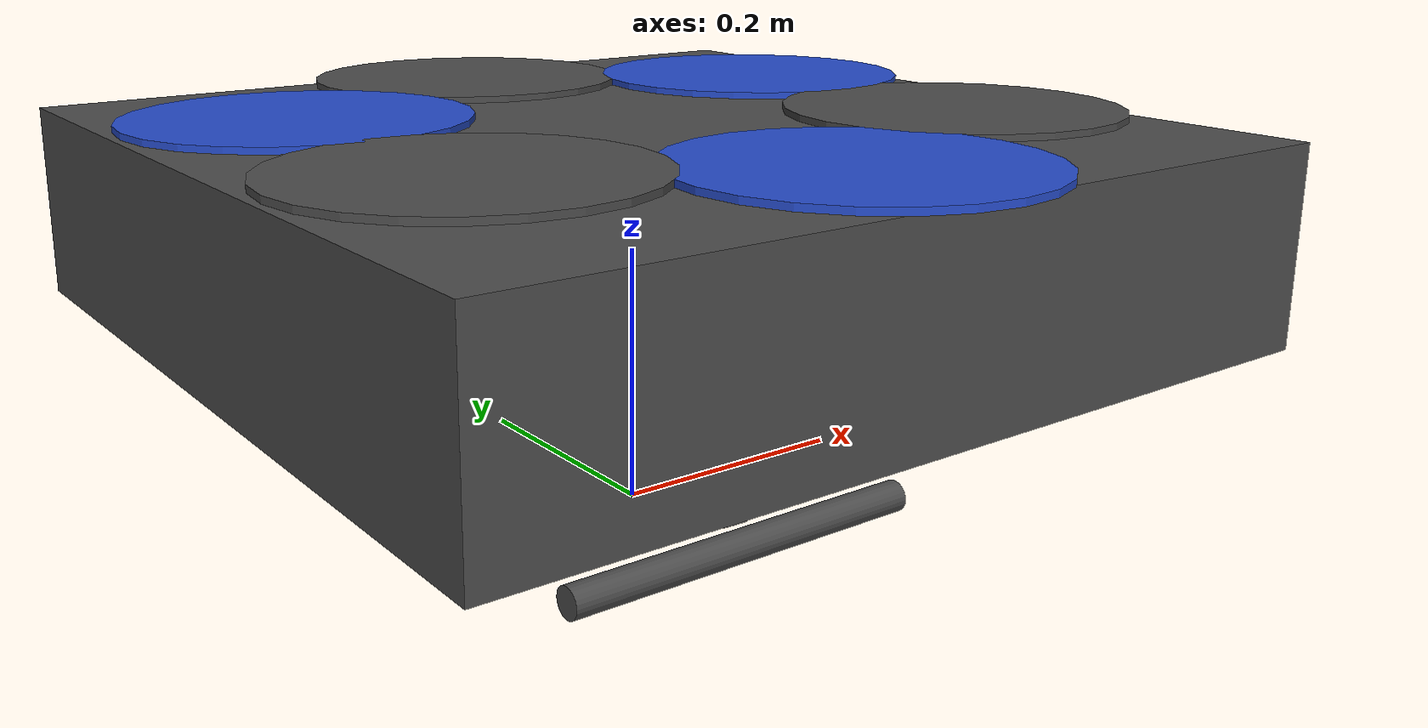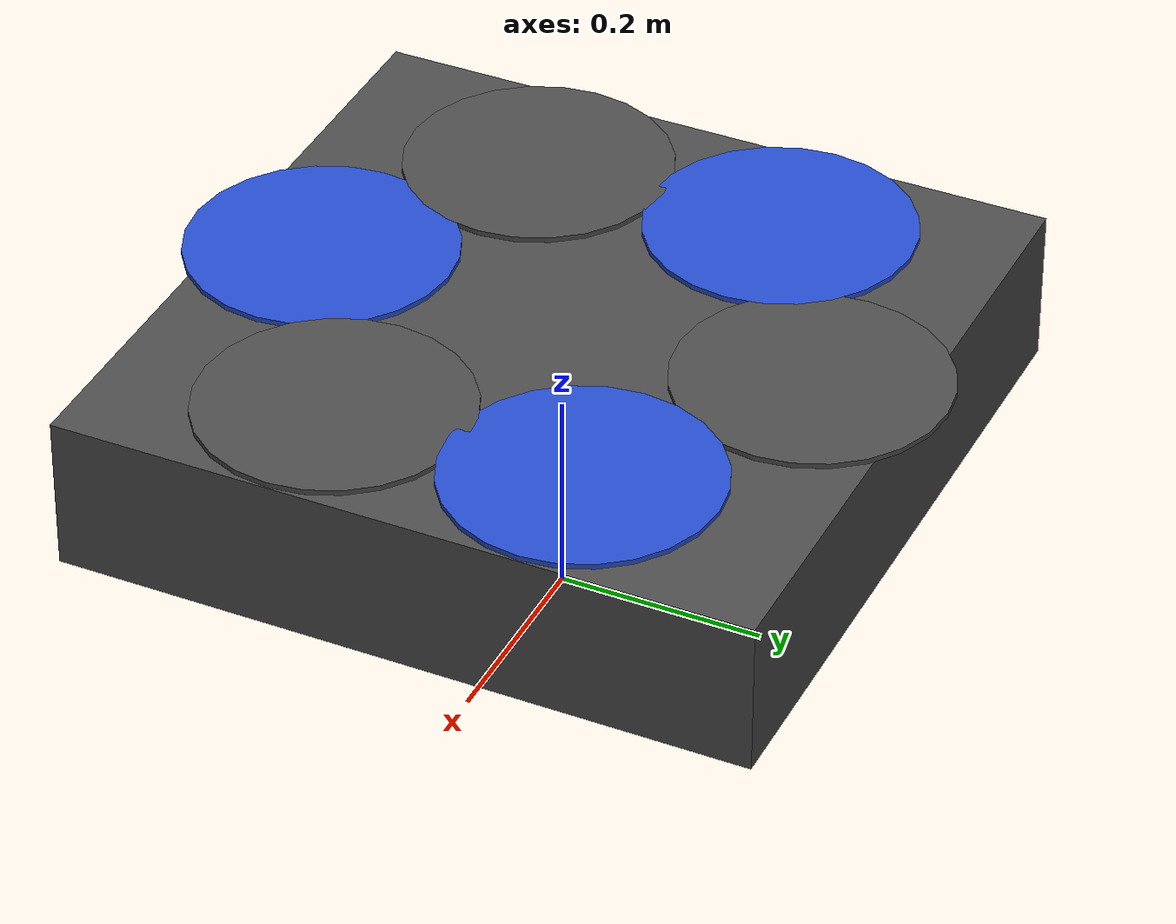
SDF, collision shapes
<sdf version='1.6'>
  <model name='yuneec_typhoon'>
    <pose frame=''>0 0 0.220217 0 0 0</pose>
    <link name='base_link'>
      <pose frame=''>0 0 0 0 -0 0</pose>
      <inertial>
        <pose frame=''>0 0 0 0 -0 0</pose>
        <mass>1.5</mass>
        <inertia>
          <ixx>0.0347563</ixx>
          <ixy>0</ixy>
          <ixz>0</ixz>
          <iyy>0.0458929</iyy>
          <iyz>0</iyz>
          <izz>0.0977</izz>
        </inertia>
      </inertial>
      <collision name='base_link_collision'>
        <pose frame=''>0 0 0.0 0 0 0</pose>
        <geometry>
          <box>
            <size>0.67 0.67 0.15</size>
          </box>
        </geometry>
        <surface>
          <contact>
            <ode>
              <min_depth>0.001</min_depth>
              <max_vel>0</max_vel>
            </ode>
          </contact>
          <friction>
            <ode/>
          </friction>
        </surface>
      </collision>
      <visual name='base_link_inertia_visual'>
        <pose frame=''>0 0 0 0 -0 0</pose>
        <geometry>
          <mesh>
            <scale>0.001 0.001 0.001</scale>
            <uri>model://yuneec_typhoon/meshes/main_body_internal_removed_face_ambient_occlusion_quadric_edge_collapse.stl</uri>
          </mesh>
        </geometry>
        <material>
          <script>
            <name>Gazebo/DarkGrey</name>
            <uri>file://media/materials/scripts/gazebo.material</uri>
          </script>
        </material>
      </visual>
      <visual name='rotor_0_prop_guard_jybhz'>
        <pose frame=''>0 0 0 0 0 3.14159265359</pose>
        <geometry>
          <mesh>
            <scale>0.001 0.001 0.001</scale>
            <uri>model://yuneec_typhoon/meshes/prop_guard_jybhz.stl</uri>
          </mesh>
        </geometry>
        <material>
          <script>
            <name>Gazebo/DarkGrey</name>
            <uri>file://media/materials/scripts/gazebo.material</uri>
          </script>
        </material>
      </visual>
      <visual name='rotor_1_prop_guard_jybhz'>
        <pose frame=''>0 0 0 0 0 -1.0471975512</pose>
        <geometry>
          <mesh>
            <scale>0.001 0.001 0.001</scale>
            <uri>model://yuneec_typhoon/meshes/prop_guard_jybhz.stl</uri>
          </mesh>
        </geometry>
        <material>
          <script>
            <name>Gazebo/DarkGrey</name>
            <uri>file://media/materials/scripts/gazebo.material</uri>
          </script>
        </material>
      </visual>
      <visual name='rotor_2_prop_guard_jybhz'>
        <pose frame=''>0 0 0 0 0 -2.09439510239</pose>
        <geometry>
          <mesh>
            <scale>0.001 0.001 0.001</scale>
            <uri>model://yuneec_typhoon/meshes/prop_guard_jybhz.stl</uri>
          </mesh>
        </geometry>
        <material>
          <script>
            <name>Gazebo/DarkGrey</name>
            <uri>file://media/materials/scripts/gazebo.material</uri>
          </script>
        </material>
      </visual>
      <visual name='rotor_3_prop_guard_jybhz'>
        <pose frame=''>0 0 0 0 0 2.09439510239</pose>
        <geometry>
          <mesh>
            <scale>0.001 0.001 0.001</scale>
            <uri>model://yuneec_typhoon/meshes/prop_guard_jybhz.stl</uri>
          </mesh>
        </geometry>
        <material>
          <script>
            <name>Gazebo/DarkGrey</name>
            <uri>file://media/materials/scripts/gazebo.material</uri>
          </script>
        </material>
      </visual>
      <visual name='rotor_4_prop_guard_jybhz'>
        <pose frame=''>0 0 0 0 0 1.0471975512</pose>
        <geometry>
          <mesh>
            <scale>0.001 0.001 0.001</scale>
            <uri>model://yuneec_typhoon/meshes/prop_guard_jybhz.stl</uri>
          </mesh>
        </geometry>
        <material>
          <script>
            <name>Gazebo/DarkGrey</name>
            <uri>file://media/materials/scripts/gazebo.material</uri>
          </script>
        </material>
      </visual>
      <visual name='rotor_5_prop_guard_jybhz'>
        <pose frame=''>0 0 0 0 0 0</pose>
        <geometry>
          <mesh>
            <scale>0.001 0.001 0.001</scale>
            <uri>model://yuneec_typhoon/meshes/prop_guard_jybhz.stl</uri>
          </mesh>
        </geometry>
        <material>
          <script>
            <name>Gazebo/DarkGrey</name>
            <uri>file://media/materials/scripts/gazebo.material</uri>
          </script>
        </material>
      </visual>
      <gravity>1</gravity>
      <velocity_decay/>
      <self_collide>0</self_collide>
    </link>

    <link name="left_leg">
      <inertial>
        <!-- place holder -->
        <pose frame=''>0 0 0 0 -0 0</pose>
        <mass>0.1</mass>
        <inertia>
          <ixx>0.001</ixx>
          <ixy>0</ixy>
          <ixz>0</ixz>
          <iyy>0.001</iyy>
          <iyz>0</iyz>
          <izz>0.001</izz>
        </inertia>
      </inertial>
      <collision name='collision'>
        <pose frame=''>-0.005 -0.14314 -0.207252 0 1.56893 0</pose>
        <geometry>
          <cylinder>
            <radius>0.012209</radius>
            <length>0.3</length>
          </cylinder>
        </geometry>
        <surface>
          <friction>
            <ode>
              <mu>1</mu>
              <mu2>1</mu2>
            </ode>
          </friction>
          <contact>
            <ode>
              <kp>1e+8</kp>
              <kd>1</kd>
              <max_vel>0.01</max_vel>
              <min_depth>0.001</min_depth>
            </ode>
          </contact>
        </surface>
      </collision>
      <collision name='collision_bar'>
        <pose frame=''>0.00052 -0.08503 -0.121187 -0.501318 0 0</pose>
        <geometry>
          <cylinder>
            <radius>0.00914984</radius>
            <length>0.176893</length>
          </cylinder>
        </geometry>
        <surface>
          <friction>
            <ode>
              <mu>1</mu>
              <mu2>1</mu2>
            </ode>
          </friction>
          <contact>
            <ode>
              <kp>1e+8</kp>
              <kd>1</kd>
              <max_vel>0.01</max_vel>
              <min_depth>0.001</min_depth>
            </ode>
          </contact>
        </surface>
      </collision>
      <visual name='base_link_left_leg'>
        <pose frame=''>0 0 0 0 -0 0</pose>
        <geometry>
          <mesh>
            <scale>0.001 0.001 0.001</scale>
            <uri>model://yuneec_typhoon/meshes/left_leg.stl</uri>
          </mesh>
        </geometry>
        <material>
          <script>
            <name>Gazebo/DarkGrey</name>
            <uri>file://media/materials/scripts/gazebo.material</uri>
          </script>
        </material>
      </visual>
    </link>
    <joint name='left_leg_joint' type='revolute'>
      <child>left_leg</child>
      <parent>base_link</parent>
      <pose frame=''>0.00026 -0.040515 -0.048 0 0 0</pose>
      <axis>
        <xyz>-1 0 0</xyz>
        <limit>
          <lower>0</lower>
          <upper>1.4</upper>
          <effort>100</effort>
          <velocity>-1</velocity>
        </limit>
        <dynamics>
          <damping>1</damping>
          <spring_reference>0</spring_reference>
          <spring_stiffness>0</spring_stiffness>
        </dynamics>
        <physics>
          <ode>
            <implicit_spring_damper>1</implicit_spring_damper>
          </ode>
        </physics>
        <use_parent_model_frame>1</use_parent_model_frame>
      </axis>
    </joint>

    <link name="right_leg">
      <pose frame=''>0 0 0 0 -0 0</pose>
      <inertial>
        <!-- place holder -->
        <pose frame=''>0 0 0 0 -0 0</pose>
        <mass>0.1</mass>
        <inertia>
          <ixx>0.001</ixx>
          <ixy>0</ixy>
          <ixz>0</ixz>
          <iyy>0.001</iyy>
          <iyz>0</iyz>
          <izz>0.001</izz>
        </inertia>
      </inertial>
      <collision name='collision'>
        <pose frame=''>-0.005 0.14314 -0.207252 0 1.56893 0</pose>
        <geometry>
          <cylinder>
            <radius>0.012209</radius>
            <length>0.3</length>
          </cylinder>
        </geometry>
        <surface>
          <friction>
            <ode>
              <mu>1</mu>
              <mu2>1</mu2>
            </ode>
          </friction>
          <contact>
            <ode>
              <kp>1e+8</kp>
              <kd>1</kd>
              <max_vel>0.01</max_vel>
              <min_depth>0.001</min_depth>
            </ode>
          </contact>
        </surface>
      </collision>
      <collision name='collision_bar'>
        <pose frame=''>0.00052 0.08503 -0.121187 0.501318 0 0</pose>
        <geometry>
          <cylinder>
            <radius>0.00914984</radius>
            <length>0.176893</length>
          </cylinder>
        </geometry>
        <surface>
          <friction>
            <ode>
              <mu>1</mu>
              <mu2>1</mu2>
            </ode>
          </friction>
          <contact>
            <ode>
              <kp>1e+8</kp>
              <kd>1</kd>
              <max_vel>0.01</max_vel>
              <min_depth>0.001</min_depth>
            </ode>
          </contact>
        </surface>
      </collision>
      <visual name='base_link_right_leg'>
        <pose frame=''>0 0 0 0 -0 0</pose>
        <geometry>
          <mesh>
            <scale>0.001 0.001 0.001</scale>
            <uri>model://yuneec_typhoon/meshes/right_leg.stl</uri>
          </mesh>
        </geometry>
        <material>
          <script>
            <name>Gazebo/DarkGrey</name>
            <uri>file://media/materials/scripts/gazebo.material</uri>
          </script>
        </material>
      </visual>
    </link>
    <joint name='right_leg_joint' type='revolute'>
      <child>right_leg</child>
      <parent>base_link</parent>
      <pose frame=''>0.00026 0.040515 -0.048 0 0 0</pose>
      <axis>
        <xyz>1 0 0</xyz>
        <limit>
          <lower>0</lower>
          <upper>1.4</upper>
          <effort>100</effort>
          <velocity>-1</velocity>
        </limit>
        <dynamics>
          <damping>1</damping>
          <spring_reference>0</spring_reference>
          <spring_stiffness>0</spring_stiffness>
        </dynamics>
        <physics>
          <ode>
            <implicit_spring_damper>1</implicit_spring_damper>
          </ode>
        </physics>
        <use_parent_model_frame>1</use_parent_model_frame>
      </axis>
    </joint>

    <link name='yuneec_typhoon/imu_link'>
      <pose frame=''>0 0 0 0 -0 0</pose>
      <inertial>
        <pose frame=''>0 0 0 0 -0 0</pose>
        <mass>0.015</mass>
        <inertia>
          <ixx>1e-05</ixx>
          <ixy>0</ixy>
          <ixz>0</ixz>
          <iyy>1e-05</iyy>
          <iyz>0</iyz>
          <izz>1e-05</izz>
        </inertia>
      </inertial>
    </link>
    <joint name='yuneec_typhoon/imu_joint' type='revolute'>
      <child>yuneec_typhoon/imu_link</child>
      <parent>base_link</parent>
      <axis>
        <xyz>1 0 0</xyz>
        <limit>
          <lower>0</lower>
          <upper>0</upper>
          <effort>0</effort>
          <velocity>0</velocity>
        </limit>
        <dynamics>
          <spring_reference>0</spring_reference>
          <spring_stiffness>0</spring_stiffness>
        </dynamics>
        <use_parent_model_frame>1</use_parent_model_frame>
      </axis>
    </joint>
    <link name='rotor_0'>
      <pose frame=''>0.211396 0.119762 0.082219 0 0 0</pose>
      <inertial>
        <pose frame=''>0 0 0 0 -0 0</pose>
        <mass>0.005</mass>
        <inertia>
          <ixx>9.75e-07</ixx>
          <ixy>0</ixy>
          <ixz>0</ixz>
          <iyy>0.000273104</iyy>
          <iyz>0</iyz>
          <izz>0.000274004</izz>
        </inertia>
      </inertial>
      <collision name='rotor_0_collision'>
        <pose frame=''>0 0 0 0 -0 0</pose>
        <geometry>
          <cylinder>
            <length>0.005</length>
            <radius>0.128</radius>
          </cylinder>
        </geometry>
        <surface>
          <contact>
            <ode/>
          </contact>
          <friction>
            <ode/>
          </friction>
        </surface>
      </collision>
      <visual name='rotor_0_visual'>
        <pose frame=''>-0.211396 -0.119762 -0.082219 0 0 0</pose>
        <geometry>
          <mesh>
            <scale>0.001 0.001 0.001</scale>
            <uri>model://yuneec_typhoon/meshes/propeller_ccw.stl</uri>
          </mesh>
        </geometry>
        <material>
          <script>
            <name>Gazebo/Blue</name>
            <uri>file://media/materials/scripts/gazebo.material</uri>
          </script>
        </material>
      </visual>
      <gravity>1</gravity>
      <velocity_decay/>
      <self_collide>0</self_collide>
    </link>
    <joint name='rotor_0_joint' type='revolute'>
      <child>rotor_0</child>
      <parent>base_link</parent>
      <axis>
        <xyz>0.0446 -0.0825 1.8977</xyz>
        <limit>
          <lower>-1e+16</lower>
          <upper>1e+16</upper>
        </limit>
        <dynamics>
          <spring_reference>0</spring_reference>
          <spring_stiffness>0</spring_stiffness>
        </dynamics>
        <use_parent_model_frame>1</use_parent_model_frame>
      </axis>
    </joint>
    <link name='rotor_1'>
      <pose frame=''>-0.209396 0.122762 0.082219 0 0 2.09439510239</pose>
      <inertial>
        <pose frame=''>0 0 0 0 -0 0</pose>
        <mass>0.005</mass>
        <inertia>
          <ixx>9.75e-07</ixx>
          <ixy>0</ixy>
          <ixz>0</ixz>
          <iyy>0.000273104</iyy>
          <iyz>0</iyz>
          <izz>0.000274004</izz>
        </inertia>
      </inertial>
      <collision name='rotor_1_collision'>
        <pose frame=''>0 0 0 0 -0 0</pose>
        <geometry>
          <cylinder>
            <length>0.005</length>
            <radius>0.128</radius>
          </cylinder>
        </geometry>
        <surface>
          <contact>
            <ode/>
          </contact>
          <friction>
            <ode/>
          </friction>
        </surface>
      </collision>
      <visual name='rotor_1_visual'>
        <pose frame=''>-0.211396 -0.119762 -0.082219 0 0 0</pose>
        <geometry>
          <mesh>
            <scale>0.001 0.001 0.001</scale>
            <uri>model://yuneec_typhoon/meshes/propeller_ccw.stl</uri>
          </mesh>
        </geometry>
        <material>
          <script>
            <name>Gazebo/Blue</name>
            <uri>file://media/materials/scripts/gazebo.material</uri>
          </script>
        </material>
      </visual>
      <gravity>1</gravity>
      <velocity_decay/>
      <self_collide>0</self_collide>
    </link>
    <joint name='rotor_1_joint' type='revolute'>
      <child>rotor_1</child>
      <parent>base_link</parent>
      <axis>
        <xyz>0.046 0.0827 1.8977</xyz>
        <limit>
          <lower>-1e+16</lower>
          <upper>1e+16</upper>
        </limit>
        <dynamics>
          <spring_reference>0</spring_reference>
          <spring_stiffness>0</spring_stiffness>
        </dynamics>
        <use_parent_model_frame>1</use_parent_model_frame>
      </axis>
    </joint>
    <link name='rotor_2'>
      <pose frame=''>-0.00187896 0.242705 0.0822169 0 0 0</pose>
      <inertial>
        <pose frame=''>0 0 0 0 -0 0</pose>
        <mass>0.005</mass>
        <inertia>
          <ixx>9.75e-07</ixx>
          <ixy>0</ixy>
          <ixz>0</ixz>
          <iyy>0.000273104</iyy>
          <iyz>0</iyz>
          <izz>0.000274004</izz>
        </inertia>
      </inertial>
      <collision name='rotor_2_collision'>
        <pose frame=''>0 0 0 0 -0 0</pose>
        <geometry>
          <cylinder>
            <length>0.005</length>
            <radius>0.128</radius>
          </cylinder>
        </geometry>
        <surface>
          <contact>
            <ode/>
          </contact>
          <friction>
            <ode/>
          </friction>
        </surface>
      </collision>
      <visual name='rotor_2_visual'>
        <pose frame=''>0.00187896 -0.242705 -0.0822169 0 0 0</pose>
        <geometry>
          <mesh>
            <scale>0.001 0.001 0.001</scale>
            <uri>model://yuneec_typhoon/meshes/propeller_cw.stl</uri>
          </mesh>
        </geometry>
        <material>
          <script>
            <name>Gazebo/DarkGrey</name>
            <uri>file://media/materials/scripts/gazebo.material</uri>
          </script>
        </material>
      </visual>
      <gravity>1</gravity>
      <velocity_decay/>
      <self_collide>0</self_collide>
    </link>
    <joint name='rotor_2_joint' type='revolute'>
      <child>rotor_2</child>
      <parent>base_link</parent>
      <axis>
        <xyz>-0.09563 -0.0003 1.8976</xyz>
        <limit>
          <lower>-1e+16</lower>
          <upper>1e+16</upper>
        </limit>
        <dynamics>
          <spring_reference>0</spring_reference>
          <spring_stiffness>0</spring_stiffness>
        </dynamics>
        <use_parent_model_frame>1</use_parent_model_frame>
      </axis>
    </joint>
    <link name='rotor_3'>
      <pose frame=''>0.211396 -0.119762 0.082219 0 0 -2.09439510239</pose>
      <inertial>
        <pose frame=''>0 0 0 0 -0 0</pose>
        <mass>0.005</mass>
        <inertia>
          <ixx>9.75e-07</ixx>
          <ixy>0</ixy>
          <ixz>0</ixz>
          <iyy>0.000273104</iyy>
          <iyz>0</iyz>
          <izz>0.000274004</izz>
        </inertia>
      </inertial>
      <collision name='rotor_3_collision'>
        <pose frame=''>0 0 0 0 -0 0</pose>
        <geometry>
          <cylinder>
            <length>0.005</length>
            <radius>0.128</radius>
          </cylinder>
        </geometry>
        <surface>
          <contact>
            <ode/>
          </contact>
          <friction>
            <ode/>
          </friction>
        </surface>
      </collision>
      <visual name='rotor_3_visual'>
        <pose frame=''>0.00187896 -0.242705 -0.0822169 0 0 0</pose>
        <geometry>
          <mesh>
            <scale>0.001 0.001 0.001</scale>
            <uri>model://yuneec_typhoon/meshes/propeller_cw.stl</uri>
          </mesh>
        </geometry>
        <material>
          <script>
            <name>Gazebo/DarkGrey</name>
            <uri>file://media/materials/scripts/gazebo.material</uri>
          </script>
        </material>
      </visual>
      <gravity>1</gravity>
      <velocity_decay/>
      <self_collide>0</self_collide>
    </link>
    <joint name='rotor_3_joint' type='revolute'>
      <child>rotor_3</child>
      <parent>base_link</parent>
      <axis>
        <xyz>0.0486 0.0811 1.8976</xyz>
        <limit>
          <lower>-1e+16</lower>
          <upper>1e+16</upper>
        </limit>
        <dynamics>
          <spring_reference>0</spring_reference>
          <spring_stiffness>0</spring_stiffness>
        </dynamics>
        <use_parent_model_frame>1</use_parent_model_frame>
      </axis>
    </joint>

    <link name='rotor_4'>
      <pose frame=''>-0.00187896 -0.242705 0.0822169 0 0 -2.09439510239</pose>
      <inertial>
        <pose frame=''>0 0 0 0 -0 0</pose>
        <mass>0.005</mass>
        <inertia>
          <ixx>9.75e-07</ixx>
          <ixy>0</ixy>
          <ixz>0</ixz>
          <iyy>0.000273104</iyy>
          <iyz>0</iyz>
          <izz>0.000274004</izz>
        </inertia>
      </inertial>
      <collision name='rotor_4_collision'>
        <pose frame=''>0 0 0 0 -0 0</pose>
        <geometry>
          <cylinder>
            <length>0.005</length>
            <radius>0.128</radius>
          </cylinder>
        </geometry>
        <surface>
          <contact>
            <ode/>
          </contact>
          <friction>
            <ode/>
          </friction>
        </surface>
      </collision>
      <visual name='rotor_4_visual'>
        <pose frame=''>-0.211396 -0.119762 -0.082219 0 0 0</pose>
        <geometry>
          <mesh>
            <scale>0.001 0.001 0.001</scale>
            <uri>model://yuneec_typhoon/meshes/propeller_ccw.stl</uri>
          </mesh>
        </geometry>
        <material>
          <script>
            <name>Gazebo/Blue</name>
            <uri>file://media/materials/scripts/gazebo.material</uri>
          </script>
        </material>
      </visual>
      <gravity>1</gravity>
      <velocity_decay/>
      <self_collide>0</self_collide>
    </link>
    <joint name='rotor_4_joint' type='revolute'>
      <child>rotor_4</child>
      <parent>base_link</parent>
      <axis>
        <xyz>-0.033996 -0.0006 0.68216</xyz>
        <limit>
          <lower>-1e+16</lower>
          <upper>1e+16</upper>
        </limit>
        <dynamics>
          <spring_reference>0</spring_reference>
          <spring_stiffness>0</spring_stiffness>
        </dynamics>
        <use_parent_model_frame>1</use_parent_model_frame>
      </axis>
    </joint>
    <link name='rotor_5'>
      <pose frame=''>-0.209396 -0.122762 0.082219 0 0 2.09439510239</pose>
      <inertial>
        <pose frame=''>0 0 0 0 -0 0</pose>
        <mass>0.005</mass>
        <inertia>
          <ixx>9.75e-07</ixx>
          <ixy>0</ixy>
          <ixz>0</ixz>
          <iyy>0.000273104</iyy>
          <iyz>0</iyz>
          <izz>0.000274004</izz>
        </inertia>
      </inertial>
      <collision name='rotor_5_collision'>
        <pose frame=''>0 0 0 0 -0 0</pose>
        <geometry>
          <cylinder>
            <length>0.005</length>
            <radius>0.128</radius>
          </cylinder>
        </geometry>
        <surface>
          <contact>
            <ode/>
          </contact>
          <friction>
            <ode/>
          </friction>
        </surface>
      </collision>
      <visual name='rotor_5_visual'>
        <pose frame=''>0.00187896 -0.242705 -0.0822169 0 0 0</pose>
        <geometry>
          <mesh>
            <scale>0.001 0.001 0.001</scale>
            <uri>model://yuneec_typhoon/meshes/propeller_cw.stl</uri>
          </mesh>
        </geometry>
        <material>
          <script>
            <name>Gazebo/DarkGrey</name>
            <uri>file://media/materials/scripts/gazebo.material</uri>
          </script>
        </material>
      </visual>
      <gravity>1</gravity>
      <velocity_decay/>
      <self_collide>0</self_collide>
    </link>
    <joint name='rotor_5_joint' type='revolute'>
      <child>rotor_5</child>
      <parent>base_link</parent>
      <axis>
        <xyz>0.0404 -0.0876 1.8976</xyz>
        <limit>
          <lower>-1e+16</lower>
          <upper>1e+16</upper>
        </limit>
        <dynamics>
          <spring_reference>0</spring_reference>
          <spring_stiffness>0</spring_stiffness>
        </dynamics>
        <use_parent_model_frame>1</use_parent_model_frame>
      </axis>
    </joint>

    <plugin name='rosbag' filename='librotors_gazebo_multirotor_base_plugin.so'>
      <robotNamespace>yuneec_typhoon</robotNamespace>
      <linkName>base_link</linkName>
      <rotorVelocitySlowdownSim>10</rotorVelocitySlowdownSim>
    </plugin>
    <plugin name='front_right_motor_model' filename='librotors_gazebo_motor_model.so'>
      <robotNamespace>yuneec_typhoon</robotNamespace>
      <jointName>rotor_0_joint</jointName>
      <linkName>rotor_0</linkName>
      <turningDirection>ccw</turningDirection>
      <timeConstantUp>0.0125</timeConstantUp>
      <timeConstantDown>0.025</timeConstantDown>
      <maxRotVelocity>838</maxRotVelocity>
      <motorConstant>8.54858e-06</motorConstant>
      <momentConstant>0.16</momentConstant>
      <commandSubTopic>/gazebo/command/motor_speed</commandSubTopic>
      <motorNumber>0</motorNumber>
      <rotorDragCoefficient>0.000806428</rotorDragCoefficient>
      <rollingMomentCoefficient>1e-06</rollingMomentCoefficient>
      <motorSpeedPubTopic>/motor_speed/0</motorSpeedPubTopic>
      <rotorVelocitySlowdownSim>10</rotorVelocitySlowdownSim>
    </plugin>
    <plugin name='back_left_motor_model' filename='librotors_gazebo_motor_model.so'>
      <robotNamespace>yuneec_typhoon</robotNamespace>
      <jointName>rotor_1_joint</jointName>
      <linkName>rotor_1</linkName>
      <turningDirection>ccw</turningDirection>
      <timeConstantUp>0.0125</timeConstantUp>
      <timeConstantDown>0.025</timeConstantDown>
      <maxRotVelocity>838</maxRotVelocity>
      <motorConstant>8.54858e-06</motorConstant>
      <momentConstant>0.16</momentConstant>
      <commandSubTopic>/gazebo/command/motor_speed</commandSubTopic>
      <motorNumber>1</motorNumber>
      <rotorDragCoefficient>0.000806428</rotorDragCoefficient>
      <rollingMomentCoefficient>1e-06</rollingMomentCoefficient>
      <motorSpeedPubTopic>/motor_speed/1</motorSpeedPubTopic>
      <rotorVelocitySlowdownSim>10</rotorVelocitySlowdownSim>
    </plugin>
    <plugin name='front_left_motor_model' filename='librotors_gazebo_motor_model.so'>
      <robotNamespace>yuneec_typhoon</robotNamespace>
      <jointName>rotor_2_joint</jointName>
      <linkName>rotor_2</linkName>
      <turningDirection>cw</turningDirection>
      <timeConstantUp>0.0125</timeConstantUp>
      <timeConstantDown>0.025</timeConstantDown>
      <maxRotVelocity>838</maxRotVelocity>
      <motorConstant>8.54858e-06</motorConstant>
      <momentConstant>0.16</momentConstant>
      <commandSubTopic>/gazebo/command/motor_speed</commandSubTopic>
      <motorNumber>2</motorNumber>
      <rotorDragCoefficient>0.000806428</rotorDragCoefficient>
      <rollingMomentCoefficient>1e-06</rollingMomentCoefficient>
      <motorSpeedPubTopic>/motor_speed/2</motorSpeedPubTopic>
      <rotorVelocitySlowdownSim>10</rotorVelocitySlowdownSim>
    </plugin>
    <plugin name='back_right_motor_model' filename='librotors_gazebo_motor_model.so'>
      <robotNamespace>yuneec_typhoon</robotNamespace>
      <jointName>rotor_3_joint</jointName>
      <linkName>rotor_3</linkName>
      <turningDirection>cw</turningDirection>
      <timeConstantUp>0.0125</timeConstantUp>
      <timeConstantDown>0.025</timeConstantDown>
      <maxRotVelocity>838</maxRotVelocity>
      <motorConstant>8.54858e-06</motorConstant>
      <momentConstant>0.16</momentConstant>
      <commandSubTopic>/gazebo/command/motor_speed</commandSubTopic>
      <motorNumber>3</motorNumber>
      <rotorDragCoefficient>0.000806428</rotorDragCoefficient>
      <rollingMomentCoefficient>1e-06</rollingMomentCoefficient>
      <motorSpeedPubTopic>/motor_speed/3</motorSpeedPubTopic>
      <rotorVelocitySlowdownSim>10</rotorVelocitySlowdownSim>
    </plugin>
    <plugin name='mavlink_interface' filename='librotors_gazebo_mavlink_interface.so'>
      <robotNamespace>yuneec_typhoon</robotNamespace>
      <imuSubTopic>/imu</imuSubTopic>
      <motorSpeedCommandPubTopic>/gazebo/command/motor_speed</motorSpeedCommandPubTopic>
    </plugin>
    <static>0</static>
    <plugin name='rotors_gazebo_imu_plugin' filename='librotors_gazebo_imu_plugin.so'>
      <robotNamespace>yuneec_typhoon</robotNamespace>
      <linkName>yuneec_typhoon/imu_link</linkName>
      <imuTopic>/imu</imuTopic>
      <gyroscopeNoiseDensity>0.0003394</gyroscopeNoiseDensity>
      <gyroscopeRandomWalk>3.8785e-05</gyroscopeRandomWalk>
      <gyroscopeBiasCorrelationTime>1000.0</gyroscopeBiasCorrelationTime>
      <gyroscopeTurnOnBiasSigma>0.0087</gyroscopeTurnOnBiasSigma>
      <accelerometerNoiseDensity>0.004</accelerometerNoiseDensity>
      <accelerometerRandomWalk>0.006</accelerometerRandomWalk>
      <accelerometerBiasCorrelationTime>300.0</accelerometerBiasCorrelationTime>
      <accelerometerTurnOnBiasSigma>0.196</accelerometerTurnOnBiasSigma>
    </plugin>
  </model>
</sdf>
